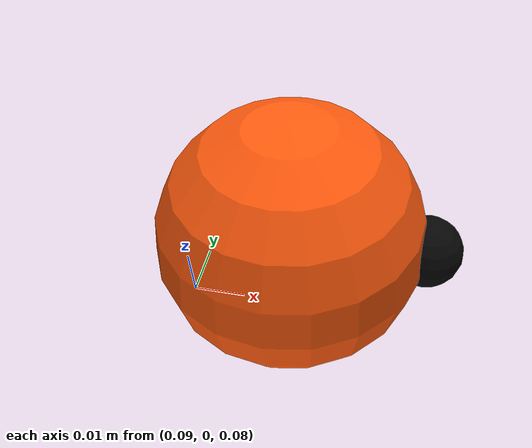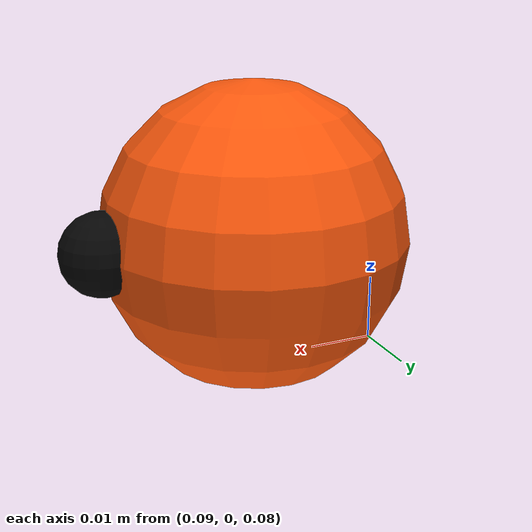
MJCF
<mujoco>
  <default>
    <default class="cube">
      <geom friction=".55 0.05" conaffinity="2" condim="3"/>
    </default>
  </default>

  <asset>
    <material name="ball_orange" rgba="1.0 0.35 0.05 1"/>
    <material name="ball_marker" rgba="0.02 0.02 0.02 1"/>
  </asset>

  <worldbody>
    <body name="cube" pos="0.11 0.0 0.1" quat="1 0 0 0" childclass="cube">
      <freejoint name="cube_freejoint"/>
      <geom name="cube" type="sphere" size="0.0225" mass="0.055" material="ball_orange" group="3"/>
      <geom name="ball_visual" type="sphere" size="0.0225" material="ball_orange" contype="0" conaffinity="0" density="0" group="2"/>
      <geom name="ball_marker" type="sphere" pos="0.0225 0 0" size="0.006" material="ball_marker" contype="0" conaffinity="0" density="0" group="2"/>
      <site name="cube_center" pos="0 0 0" group="4"/>
    </body>
  </worldbody>
</mujoco>
